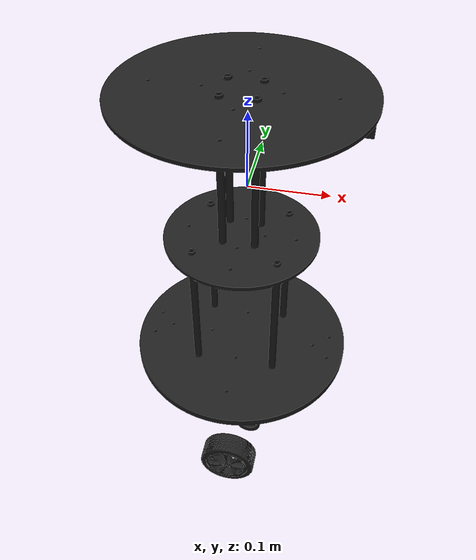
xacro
<?xml version="1.0" ?>
<robot name="my_robot" xmlns:xacro="http://ros.org/wiki/xacro">
  <xacro:include filename="$(find my_project)/urdf/common_properties.xacro"/>
  <xacro:include filename="$(find my_project)/urdf/robot.gazebo.xacro"/>

  <link name="base_footprint"/>

  <joint name="base_joint" type="fixed">
    <pose>0 0 0 0 0 0</pose>
    <parent link="base_footprint"/>
    <child link="base_link"/>
  </joint>

  <link name="base_link">
    <pose>0 0 0 0 0 0</pose>
    <visual>
      <origin xyz="0.06 0.006 -0.3" rpy="0 0 -1.5708" />
      <geometry>
        <mesh filename="package://my_project/meshes/bases/Base.stl" scale="0.001 0.001 0.001"/>
      </geometry>
      <material name="light_black"/>
    </visual>

    <collision>
      <geometry>
        <cylinder length="0.6" radius="0.15"/>
      </geometry>
    </collision>

    <inertial>
      <mass value="5"/>
      <inertia ixx="0.17812" ixy="0" ixz="0"
               iyy="0.17812" iyz="0"
               izz="0.05624" />
    </inertial>
  </link>

  <joint name="wheel_left_joint" type="continuous">
    <parent link="base_link"/>
    <child link="wheel_left_link"/>
    <origin xyz="0.013 0.17 -0.3" rpy="-1.57 0 0"/>
    <axis xyz="0 0 1"/>
  </joint>

  <link name="wheel_left_link">
    <visual>
      <origin xyz="0 0 0" rpy="0 0 0"/>
      <geometry>
        <mesh filename="package://my_project/meshes/wheels/Wheel.stl" scale="0.01 0.01 0.01"/>
      </geometry>
      <material name="dark"/>
    </visual>

    <collision>
      <origin xyz="0 0 0" rpy="0 0 0"/>
      <geometry>
        <cylinder length="0.02" radius="0.0325"/>
      </geometry>
    </collision>

    <inertial>
      <origin xyz="0 0 0" />
      <mass value="0.3" />
      <inertia ixx="8.921875e-05" ixy="0" ixz="0"
               iyy="8.921875e-05" iyz="0"
               izz="0.000158" />
      </inertial>
  </link>

  <transmission name="wheel_left_tran">
    <type>transmission_interface/SimpleTransmission</type>
    <joint name="wheel_left_joint">
      <hardwareInterface>hardware_interface/VelocityJointInterface</hardwareInterface>
    </joint>
    <actuator name="wheel_left_motor">
      <hardwareInterface>VelocityJointInterface</hardwareInterface>
      <mechanicalReduction>34</mechanicalReduction>
    </actuator>
  </transmission>

  <joint name="wheel_right_joint" type="continuous">
    <parent link="base_link"/>
    <child link="wheel_right_link"/>
    <origin xyz="0.013 -0.17 -0.3" rpy="-1.57 0 0"/>
    <axis xyz="0 0 1"/>
  </joint>

  <link name="wheel_right_link">
    <visual>
      <origin xyz="0 0 0" rpy="0 3.1415 0"/>
      <geometry>
        <mesh filename="package://my_project/meshes/wheels/Wheel.stl" scale="0.01 0.01 0.01"/>
      </geometry>
      <material name="dark"/>
    </visual>

    <collision>
      <origin xyz="0 0 0" rpy="0 0 0"/>
      <geometry>
        <cylinder length="0.018" radius="0.033"/>
      </geometry>
    </collision>

    <inertial>
      <origin xyz="0 0 0" />
      <mass value="0.3" />
      <inertia ixx="8.921875e-05" ixy="0" ixz="0"
               iyy="8.921875e-05" iyz="0"
               izz="0.000158" />
      </inertial>
  </link>

  <transmission name="wheel_right_tran">
    <type>transmission_interface/SimpleTransmission</type>
    <joint name="wheel_right_joint">
      <hardwareInterface>hardware_interface/VelocityJointInterface</hardwareInterface>
    </joint>
    <actuator name="wheel_right_motor">
      <hardwareInterface>VelocityJointInterface</hardwareInterface>
      <mechanicalReduction>34</mechanicalReduction>
    </actuator>
  </transmission>

  <joint name="caster_back_joint" type="fixed">
    <parent link="base_link"/>
    <child link="caster_back_link"/>
    <origin xyz="-0.1 0 -0.31625" rpy="-1.57 0 0"/>
  </joint>

  <link name="caster_back_link">
    <collision>
      <origin xyz="0 0 0" rpy="0 0 0"/>
      <geometry>
        <box size="0.03 0.03 0.03"/>
      </geometry>
    </collision>

    <inertial>
      <origin xyz="0 0 0" />
      <mass value="0.005" />
      <inertia ixx="0.001" ixy="0.0" ixz="0.0"
               iyy="0.001" iyz="0.0"
               izz="0.001" />
    </inertial>
  </link>

  <joint name="caster_front_joint" type="fixed">
    <parent link="base_link"/>
    <child link="caster_front_link"/>
    <origin xyz="0.1 0 -0.31625" rpy="-1.57 0 0"/>
  </joint>

  <link name="caster_front_link">
    <collision>
      <origin xyz="0 0 0" rpy="0 0 0"/>
      <geometry>
        <box size="0.032 0.032 0.032"/>
      </geometry>
    </collision>

    <inertial>
      <origin xyz="0 0 0" />
      <mass value="0.005" />
      <inertia ixx="0.001" ixy="0.0" ixz="0.0"
               iyy="0.001" iyz="0.0"
               izz="0.001" />
    </inertial>
  </link>

  <joint name="camera_joint" type="fixed">
    <origin xyz="0.0 0.0 0.2" rpy="0 0.0 0"/>
    <parent link="base_link"/>
    <child link="camera_link"/>
  </joint>

  <link name="camera_link">
    <collision>
      <origin xyz="0.16 0.0 0.0" rpy="0 0 0"/>
      <geometry>
        <box size="0.005 0.015 0.015"/>
      </geometry>
    </collision>
  </link>

  <joint name="camera_rgb_joint" type="fixed">
    <origin xyz="0.16 0.0 0.0" rpy="0 0 0"/>
    <parent link="camera_link"/>
    <child link="camera_rgb_frame"/>
  </joint>
  <link name="camera_rgb_frame"/>

  <joint name="camera_rgb_optical_joint" type="fixed">
    <origin xyz="0.0 0 0" rpy="0 0 0"/>
    <parent link="camera_rgb_frame"/>
    <child link="camera_rgb_optical_frame"/>
  </joint>
  <link name="camera_rgb_optical_frame"/>

  <joint name="sonar1_joint" type="fixed">
    <parent link="base_link"/>
    <child link="sonar1_link" />
    <origin xyz="0.11780 0.11780 -0.25" rpy="0 0 0.7853"/>
  </joint>

  <link name="sonar1_link">
  </link>

  <joint name="sonar2_joint" type="fixed">
    <parent link="base_link"/>
    <child link="sonar2_link" />
    <origin xyz="0.11780 -0.11780 -0.25" rpy="0 0 -0.7853"/>
  </joint>

  <link name="sonar2_link">
  </link>

  <joint name="sonar3_joint" type="fixed">
    <parent link="base_link"/>
    <child link="sonar3_link" />
    <origin xyz="-0.11780 0.11780 -0.25" rpy="0 0 2.35619"/>
  </joint>

  <link name="sonar3_link">
  </link>

  <joint name="sonar4_joint" type="fixed">
    <parent link="base_link"/>
    <child link="sonar4_link" />
    <origin xyz="-0.11780 -0.11780 -0.25" rpy="0 0 -2.35619"/>
  </joint>

  <link name="sonar4_link">
  </link>

</robot>
